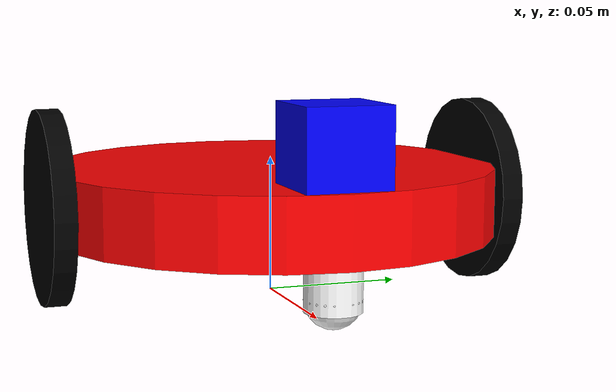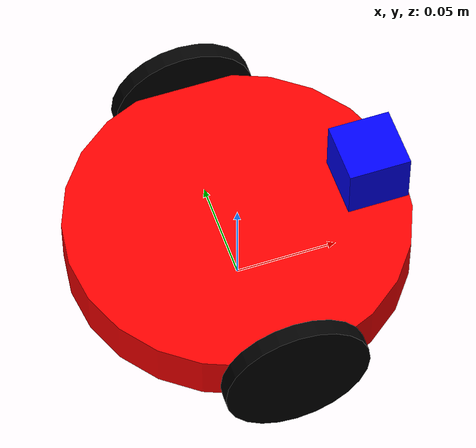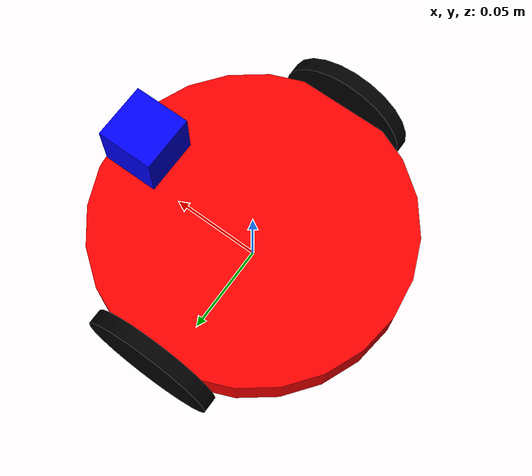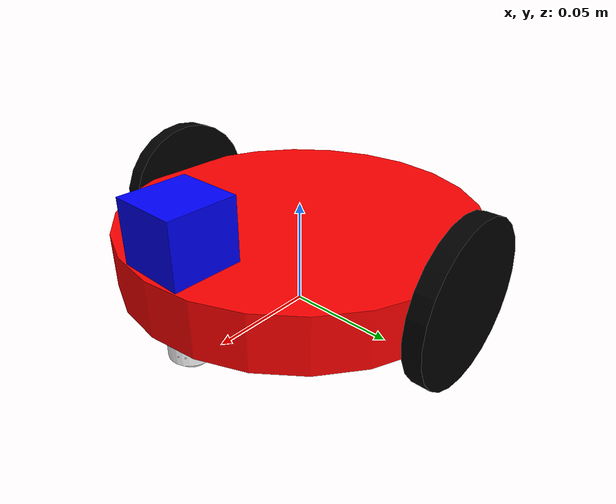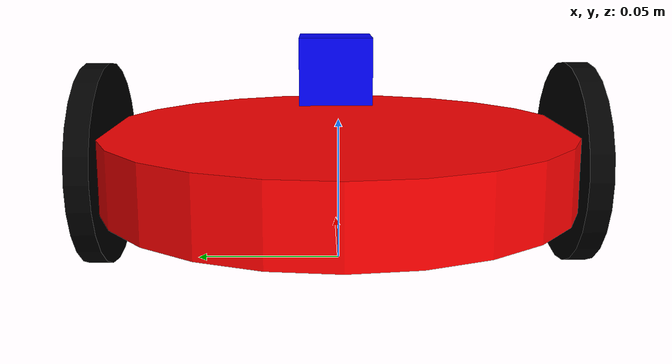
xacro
<?xml version="1.0"?>
<robot xmlns:xacro="http://www.ros.org/wiki/xacro" name="Differential Robot">

    <xacro:property name="base_link_radius" value="0.0825" />
    <xacro:property name="base_link_length" value="0.025" />

    <xacro:property name="head_width" value="0.03" />
    <xacro:property name="head_length" value="0.03" />
    <xacro:property name="head_height" value="0.03" />

    <xacro:property name="pi_over_2y" value="1.57075" />
    <xacro:property name="pi_over_2z" value="1.57075" />

    <xacro:property name="wheel_radius" value="0.035" />
    <xacro:property name="wheel_length" value="0.008" />

    <xacro:property name="passive_wheel_holder_radius" value="0.01" />
    <xacro:property name="passive_wheel_holder_length" value="0.018" />
    <xacro:property name="passive_wheel_holder_z_offset" value="-0.02" />

    <xacro:macro name="wheel" params="prefix y_offset">
        <link name="${prefix}_wheel">
            <visual>
                <origin xyz="0 0 0" rpy="0 ${pi_over_2y} ${pi_over_2z}" />
                <geometry>
                    <cylinder radius="${wheel_radius}" length="${wheel_length}" />
                </geometry>
                <material name="black"></material>
            </visual>
            <collision>
                <origin xyz="0 0 0" rpy="0 ${pi_over_2y} ${pi_over_2z}" />
                <geometry>
                    <cylinder radius="${wheel_radius}" length="${wheel_length}" />
                </geometry>
            </collision>
            <inertial>
                <mass value="0.015"/>
                <origin xyz="0 0 0" rpy="0 ${pi_over_2y} ${pi_over_2z}" />
                <inertia ixx="0.00000467375" ixy="0.0" ixz="0.0" iyy="0.00000467375" iyz="0.0" izz="0.0000091875"/>
            </inertial>
        </link>

        <joint name="base_to_${prefix}_wheel" type="continuous">
            <axis xyz="0 1 0"/>
            <origin xyz="0 ${y_offset} 0" rpy="0 0 0" />
            <parent link="base_link"/>
            <child link="${prefix}_wheel"/>
        </joint>

        <transmission name="base_to_${prefix}_wheel_trans">
            <type>transmission_interface/SimpleTransmission</type>
            <joint name="base_to_${prefix}_wheel">
                <hardwareInterface>hardware_interface/VelocityJointInterface</hardwareInterface>
            </joint>
            <actuator name="${prefix}_wheel_motor">
                <mechanicalReduction>1</mechanicalReduction>
            </actuator>
        </transmission>

        <gazebo reference="${prefix}_wheel">
            <mu1 value="200.0"/>
            <mu2 value="100.0"/>
            <kp value="10000000.0" />
            <kd value="1.0" />
            <material>Gazebo/Black</material>
        </gazebo>
    </xacro:macro>

    <!-- Colors for Robot Parts -->
    <material name="red">
        <color rgba="1 0 0 1"/>
    </material>

    <material name="black">
        <color rgba="0 0 0 1"/>
    </material>

    <material name="white">
        <color rgba="1 1 1 1"/>
    </material>

    <material name="blue">
        <color rgba="0 0 1 1"/>
    </material>

    <!-- Base Footprint Link -->
    <link name="base_footprint"></link>

    <joint name="base_footprint__base_link" type="fixed">
        <origin xyz="0 0 0.035" rpy="0 0 0" />
        <parent link="base_footprint"/>
        <child link="base_link"/>
    </joint>

    <!-- Base Link -->
    <link name="base_link">
        <visual>
            <geometry>
                <cylinder radius="${base_link_radius}" length="${base_link_length}" />
            </geometry>
            <material name="red"></material>
        </visual>
        <collision>
            <geometry>
                <cylinder radius="${base_link_radius}" length="${base_link_length}" />
            </geometry>
        </collision>
        <inertial>
            <mass value="0.1"/>
            <inertia ixx="0.0001753645833" ixy="0.0" ixz="0.0" iyy="0.0001753645833" iyz="0.0" izz="0.0003403125"/>
        </inertial>
    </link>

    <!-- Head Link and Joint with Base Link -->
    <joint name="base_to_head" type="fixed">
        <origin xyz="0.065 0 0.025" rpy="0 0 0" />
        <parent link="base_link"/>
        <child link="head"/>
    </joint>

    <link name="head">
        <visual>
            <geometry>
                <box size="${head_length} ${head_width} ${head_height}" />
            </geometry>
            <material name="blue"></material>
        </visual>
        <collision>
            <geometry>
                <box size="${head_length} ${head_width} ${head_height}" />
            </geometry>
        </collision>
        <inertial>
            <mass value="0.02"/>
            <inertia ixx="0.000003" ixy="0.0" ixz="0.0" iyy="0.000003" iyz="0.0" izz="0.000003"/>
        </inertial>
    </link>

    <!-- Left Wheel Link and Joint with Base Link -->
    <xacro:wheel prefix="left" y_offset="0.0825" />

    <!-- Right Wheel Link and Joint with Base Link -->
    <xacro:wheel prefix="right" y_offset="-0.0825" />

    <!-- Passive Wheel Holder Link and Joint with Base Link -->
    <joint name="base_to_passive_wheel_holder" type="fixed">
        <origin xyz="0.065 0 0" rpy="0 0 0" />
        <parent link="base_link"/>
        <child link="passive_wheel_holder"/>
    </joint>

    <link name="passive_wheel_holder">
        <visual>
            <origin xyz="0 0 ${passive_wheel_holder_z_offset}" />
            <geometry>
                <cylinder radius="${passive_wheel_holder_radius}" length="${passive_wheel_holder_length}" />
            </geometry>
            <material name="white"></material>
        </visual>
        <collision>
            <origin xyz="0 0 ${passive_wheel_holder_z_offset}" />
            <geometry>
                <cylinder radius="${passive_wheel_holder_radius}" length="${passive_wheel_holder_length}" />
            </geometry>
        </collision>
        <inertial>
            <mass value="0.02"/>
            <origin xyz="0 0 ${passive_wheel_holder_z_offset}" />
            <inertia ixx="0.00000104" ixy="0.0" ixz="0.0" iyy="0.00000104" iyz="0.0" izz="0.000001"/>
        </inertial>
    </link>

    <!-- Passive Wheel Link and Joint with Passive Wheel Holder Link -->
    <joint name="base_to_passive_wheel" type="fixed">
        <origin xyz="0 0 -0.025" rpy="0 0 0" />
        <parent link="passive_wheel_holder"/>
        <child link="passive_wheel"/>
    </joint>

    <link name="passive_wheel">
        <visual>
            <geometry>
                <sphere radius="${passive_wheel_holder_radius}" />
            </geometry>
            <material name="white"></material>
        </visual>
        <collision>
            <geometry>
                <sphere radius="${passive_wheel_holder_radius}" />
            </geometry>
        </collision>
        <inertial>
            <mass value="0.02"/>
            <inertia ixx="0.0000008" ixy="0.0" ixz="0.0" iyy="0.0000008" iyz="0.0" izz="0.0000008"/>
        </inertial>
    </link>

    <xacro:include filename="gazebo.urdf" />
</robot>
